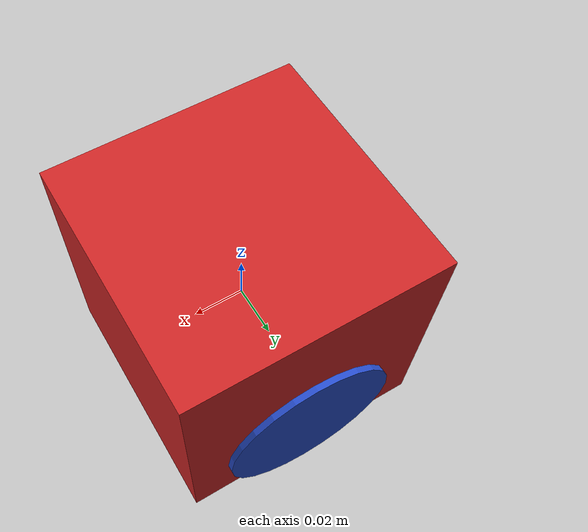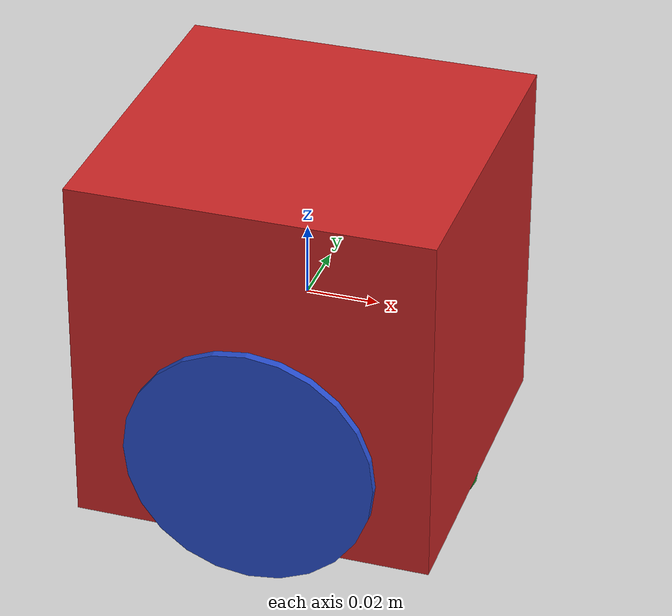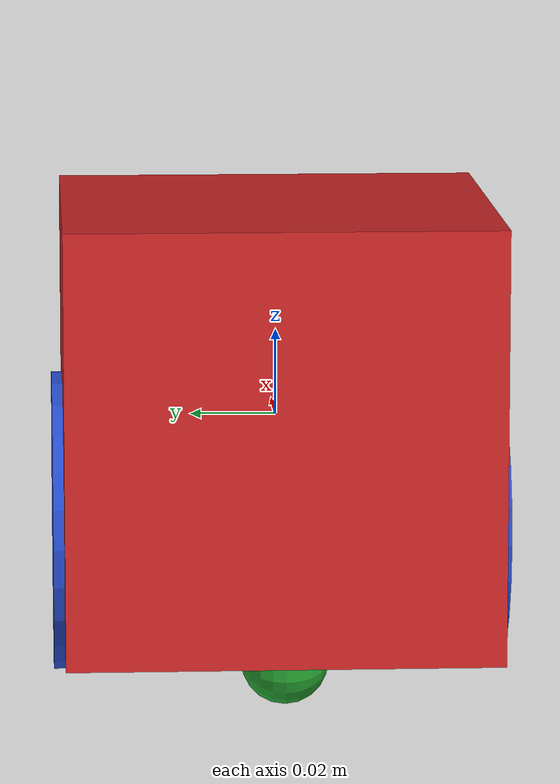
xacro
<?xml version="1.0" ?>
<robot name="box_bot" xmlns:xacro="http://www.ros.org/wiki/xacro">

  <xacro:arg name="robot_name" default="box_bot_X"/>
  <xacro:property name="robot_name_prop" value="$(arg robot_name)"/>

  <xacro:include filename="$(find pechan_gazebo_sim)/description/robot/materials.xacro" />
  <xacro:include filename="$(find pechan_gazebo_sim)/description/robot/properties.xacro" />
  <xacro:include filename="$(find pechan_gazebo_sim)/description/robot/macros.xacro" />
  <xacro:include filename="$(find pechan_gazebo_sim)/description/robot/wheels.xacro" />
  <xacro:include filename="$(find pechan_gazebo_sim)/description/robot/caster_wheels.xacro" />
  <xacro:include filename="$(find pechan_gazebo_sim)/description/robot/box_bot_body.xacro" />
  <xacro:include filename="$(find pechan_gazebo_sim)/description/robot/box_bot_gazebo.xacro" />
  <xacro:box_bot_sim robot_name="$(arg robot_name)"/>

  <xacro:box_bot_body parent_name="${base_name}"/>

  <xacro:link_wheel name="right_wheel" r="${wheel_radius}" l="${wheel_width}" incr="${wheel_increment}"/>
  <xacro:joint_wheel name="joint_right_wheel" parent="${base_name}" child="right_wheel" origin_xyz="0 ${-1.0 * base_box_x / 2.0} ${-1.0 * wheel_radius}" />

  <xacro:link_wheel name="left_wheel" r="${wheel_radius}" l="${wheel_width}" incr="${wheel_increment}"/>
  <xacro:joint_wheel name="joint_left_wheel" parent="${base_name}" child="left_wheel" origin_xyz="0 ${base_box_x / 2.0} ${-1.0 * wheel_radius}" />

  <xacro:caster_wheel parent="chassis" caster_wheel_name="front" origin_xyz="${(base_box_x / 2.0) - wheel_increment} 0 ${-1.0* base_box_x / 2.0}" radius="${wheel_increment}" length="${dummy_length}"/>
  <xacro:caster_wheel parent="chassis" caster_wheel_name="back" origin_xyz="${(-1.0 *base_box_x / 2.0) + wheel_increment} 0 ${-1.0* base_box_x / 2.0}" radius="${wheel_increment}" length="${dummy_length}"/>

</robot>

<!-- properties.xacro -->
<robot xmlns:xacro="http://www.ros.org/wiki/xacro">

	<!-- Constants -->
	<xacro:property name="PI" value="3.1415926535897931"/>

	<!-- Base Box -->
    <xacro:property name="base_name" value="chassis"/>
    <xacro:property name="base_box_mass" value="1.0"/>
	<xacro:property name="base_box_x" value="0.1"/>
    <xacro:property name="base_box_y" value="0.1"/>
    <xacro:property name="base_box_z" value="0.1"/>

    <!-- Wheels -->
	<xacro:property name="wheel_radius" value="${base_box_z / 4.0}"/>
    <xacro:property name="wheel_width" value="0.005"/>
    <xacro:property name="wheel_increment" value="0.010"/>
    <xacro:property name="mu1_wheel" value="0.5"/>
    <xacro:property name="mu2_wheel" value="0.5"/>
    <xacro:property name="kp_wheel" value="1000.0"/>
    <xacro:property name="kd_wheel" value="1000.0"/>

    <!--Caster Wheels-->
    <xacro:property name="dummy_length" value="0.001"/>

</robot>

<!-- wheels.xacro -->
<robot xmlns:xacro="http://www.ros.org/wiki/xacro">

    <!-- Wheels-->
  <xacro:macro  name="link_wheel" params="name r l incr">
      <link name="${name}">
          <inertial>
            <mass value="0.2"/>
            <origin rpy="0 1.5707 1.5707" xyz="0 0 0"/>
              <xacro:cylinder_inertia mass="0.2" r="${r}" l="${l}" />
          </inertial>
          <collision name="link_right_wheel_collision">
            <origin rpy="0 1.5707 1.5707" xyz="0 0 0"/>
            <geometry>
              <cylinder length="${l}" radius="${r + incr}"/>
            </geometry>
          </collision>
          <visual name="link_right_wheel_visual">
            <origin rpy="0 1.5707 1.5707" xyz="0 0 0"/>
            <geometry>
              <cylinder length="${l}" radius="${r + incr}"/>
            </geometry>
          </visual>
      </link>
  </xacro:macro >

  <xacro:macro  name="joint_wheel" params="name parent child origin_xyz">
    <joint name="${name}" type="continuous">
      <origin rpy="0 0 0" xyz="${origin_xyz}"/>
      <child link="${child}"/>
      <parent link="${parent}"/>
      <axis rpy="0 0 0" xyz="0 1 0"/>
      <limit effort="10000" velocity="1000"/>
      <joint_properties damping="1.0" friction="1.0"/>
    </joint>
  </xacro:macro >

</robot>

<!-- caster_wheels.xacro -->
<robot xmlns:xacro="http://www.ros.org/wiki/xacro">

    <!-- Caster Wheels-->
    <xacro:macro  name="caster_wheel" params="parent caster_wheel_name origin_xyz radius length">
      <!-- CASTER FRONT-->
      <link name="${caster_wheel_name}_yaw_link">
        <inertial>
            <mass value="0.001"/>
            <origin rpy="0 1.5707 1.5707" xyz="0 0 0"/>
            <xacro:cylinder_inertia mass="0.001" r="${0.9 * radius/2.0}" l="${length}" />
          </inertial>
          <collision name="link_right_wheel_collision">
            <origin rpy="0 1.5707 1.5707" xyz="0 0 0"/>
            <geometry>
              <cylinder length="${length}" radius="${0.9 * radius/2.0}"/>
            </geometry>
          </collision>
      </link>

      <joint name="${caster_wheel_name}_yaw_joint" type="continuous">
        <origin rpy="0 0 0" xyz="${origin_xyz}" />
        <parent link="${parent}" />
        <child link="${caster_wheel_name}_yaw_link" />
        <axis xyz="0 0 1" />
        <limit effort="1000.0" velocity="100.0" />
        <dynamics damping="0.0" friction="0.1"/>
      </joint>

      <transmission name="${caster_wheel_name}_yaw_joint_trans">
      <type>transmission_interface/SimpleTransmission</type>
      <joint name="${caster_wheel_name}_yaw_joint">
        <hardwareInterface>EffortJointInterface</hardwareInterface>
      </joint>
      <actuator name="${caster_wheel_name}_yaw_jointMotor">
        <hardwareInterface>EffortJointInterface</hardwareInterface>
        <mechanicalReduction>1</mechanicalReduction>
      </actuator>
    </transmission>

    <link name="${caster_wheel_name}_roll_link">
        <inertial>
            <mass value="0.001"/>
            <origin rpy="0 1.5707 1.5707" xyz="0 0 0"/>
            <xacro:cylinder_inertia mass="0.001" r="${0.9 * radius/2.0}" l="${length}" />
          </inertial>
          <collision name="link_right_wheel_collision">
            <origin rpy="0 1.5707 1.5707" xyz="0 0 0"/>
            <geometry>
              <cylinder length="${length}" radius="${0.9 * radius/2.0}"/>
            </geometry>
          </collision>
      </link>

      <joint name="${caster_wheel_name}_roll_joint" type="continuous">
        <origin rpy="0 0 0" xyz="0 0 0" />
        <parent link="${caster_wheel_name}_yaw_link" />
        <child link="${caster_wheel_name}_roll_link" />
        <axis xyz="1 0 0" />
        <limit effort="1000.0" velocity="100.0" />
        <dynamics damping="0.0" friction="0.1"/>
      </joint>

      <transmission name="${caster_wheel_name}_roll_joint_trans">
      <type>transmission_interface/SimpleTransmission</type>
      <joint name="${caster_wheel_name}_roll_joint">
        <hardwareInterface>EffortJointInterface</hardwareInterface>
      </joint>
      <actuator name="${caster_wheel_name}_roll_jointMotor">
        <hardwareInterface>EffortJointInterface</hardwareInterface>
        <mechanicalReduction>1</mechanicalReduction>
      </actuator>
    </transmission>

      <link name="${caster_wheel_name}_pitch_link">
        <inertial>
          <mass value="0.001"/>
          <origin rpy="0 1.5707 1.5707" xyz="0 0 0"/>
            <xacro:sphere_inertia mass="0.001" r="${radius}"/>
        </inertial>
        <collision name="${caster_wheel_name}_collision">
          <origin rpy="0 1.5707 1.5707" xyz="0 0 0"/>
          <geometry>
            <sphere radius="${radius}"/>
          </geometry>
        </collision>
        <visual name="${caster_wheel_name}_visual">
          <origin rpy="0 1.5707 1.5707" xyz="0 0 0"/>
          <geometry>
            <sphere radius="${radius}"/>
          </geometry>
        </visual>
      </link>

      <joint name="${caster_wheel_name}_pitch_joint" type="continuous">
        <origin rpy="0 0 0" xyz="0 0 0" />
        <parent link="${caster_wheel_name}_roll_link" />
        <child link="${caster_wheel_name}_pitch_link" />
        <axis xyz="0 1 0" />
        <limit effort="1000.0" velocity="100.0" />
        <dynamics damping="0.0" friction="0.1"/>
      </joint>

    <transmission name="${caster_wheel_name}_pitch_joint_trans">
      <type>transmission_interface/SimpleTransmission</type>
      <joint name="${caster_wheel_name}_pitch_joint">
        <hardwareInterface>EffortJointInterface</hardwareInterface>
      </joint>
      <actuator name="${caster_wheel_name}_pitch_jointMotor">
        <hardwareInterface>EffortJointInterface</hardwareInterface>
        <mechanicalReduction>1</mechanicalReduction>
      </actuator>
    </transmission>

    <gazebo reference="${caster_wheel_name}_pitch_link">
      <kp>1000000000000000000000000000.0</kp>
      <kd>1000000000000000000000000000.0</kd>
      <mu1>${mu1_wheel}</mu1>
      <mu2>${mu2_wheel}</mu2>
      <material>Gazebo/Green</material>
    </gazebo>

  </xacro:macro >

</robot>

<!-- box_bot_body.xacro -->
<robot xmlns:xacro="http://www.ros.org/wiki/xacro">

    <xacro:macro  name="box_bot_body" params="parent_name">

      <link name="base_link">
      </link>

      <link name="${parent_name}">
        <!-- pose and inertial -->
        <pose>0 0 0 0 0 0</pose>
        <inertial>
          <mass value="${base_box_mass}"/>
          <origin rpy="0 0 0" xyz="0 0 0"/>
          <xacro:box_inertia mass="0.2" x="${base_box_x}" y="${base_box_y}" z="${base_box_z}"/>
          <inertia ixx="0.000241935" ixy="0" ixz="0" iyy="0.000241935" iyz="0" izz="0.000241935"/>
        </inertial>
        <!-- body -->
        <collision name="collision_${parent_name}">
          <geometry>
            <box size="${base_box_x} ${base_box_y} ${base_box_z}"/>
          </geometry>
        </collision>

        <visual name="visual_${parent_name}">
          <geometry>
            <box size="${base_box_x} ${base_box_y} ${base_box_z}"/>
          </geometry>
        </visual>
      </link>

      <gazebo reference="chassis">
        <material>Gazebo/Red</material>
      </gazebo>

      <joint name="base_link_joint" type="fixed">
        <origin rpy="0 0 0" xyz="0 0 0" />
        <parent link="base_link" />
        <child link="${parent_name}" />
      </joint>

      <joint name="laser_sensor_joint" type="fixed">
        <origin rpy="0 0 0" xyz="0 0 0" />
        <parent link="${parent_name}"/>
        <child link="laser_sensor_link"/>
      </joint>

      <link name="laser_sensor_link">
        <inertial>
          <mass value="1e-5"/>
          <origin xyz="0 0 0" rpy="0 0 0"/>
          <inertia ixx="1e-6" ixy="0" ixz="0" iyy="1e-6" iyz="0" izz="1e-6"/>
        </inertial>
        <collision>
          <origin xyz="0 0 0" rpy="0 0 0"/>
          <geometry>
            <box size="0.1 0.1 0.1"/>
          </geometry>
        </collision>
      </link>

    </xacro:macro >

</robot>
